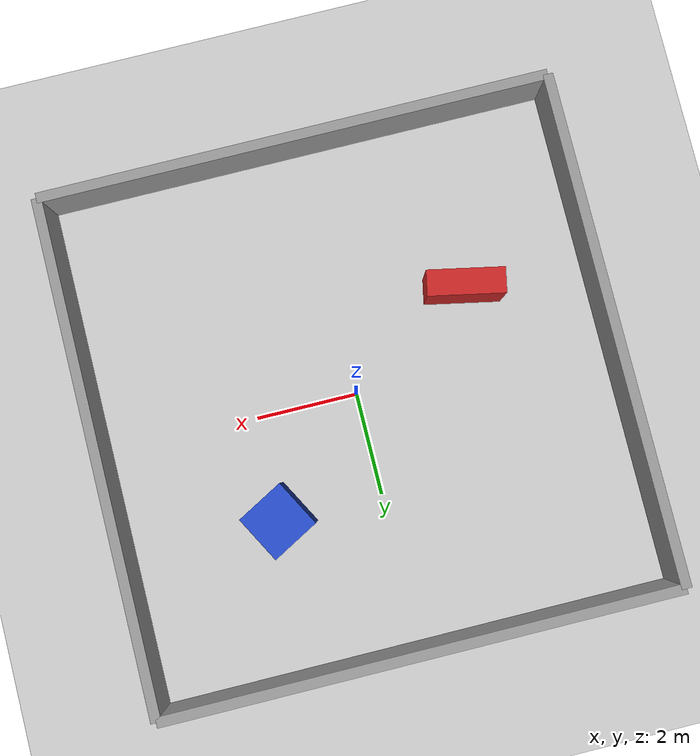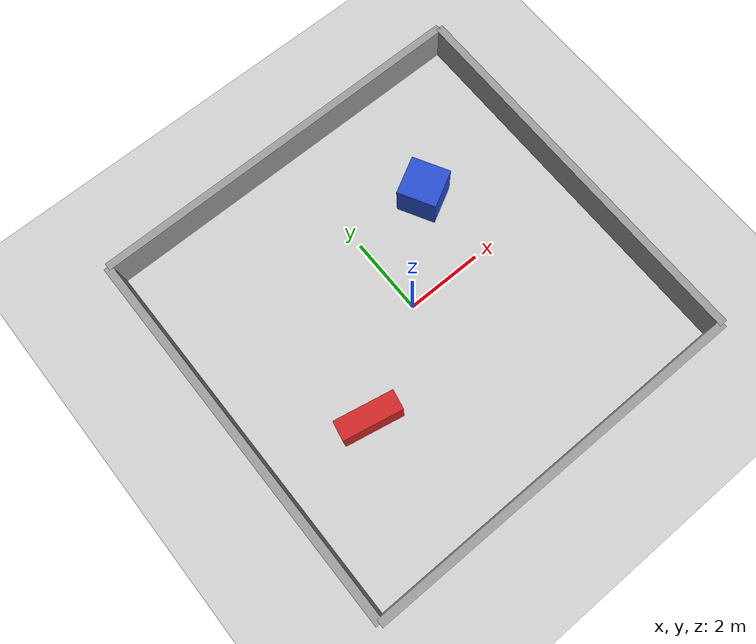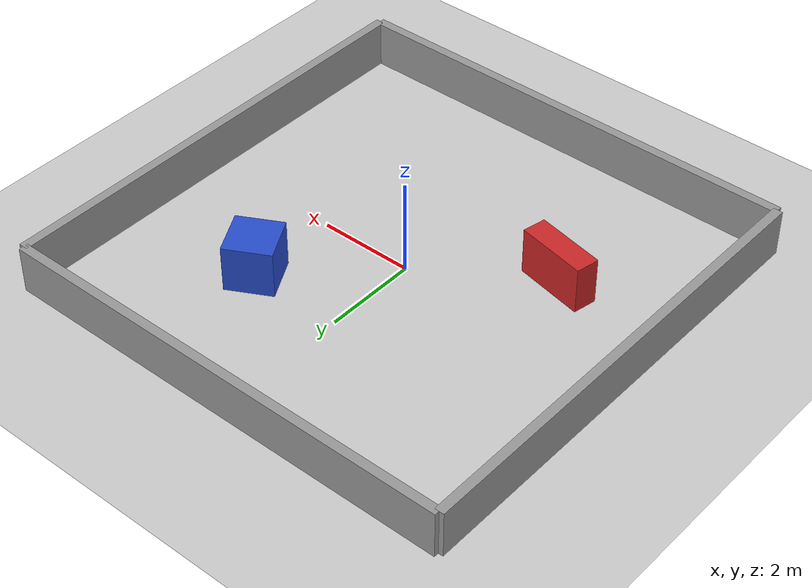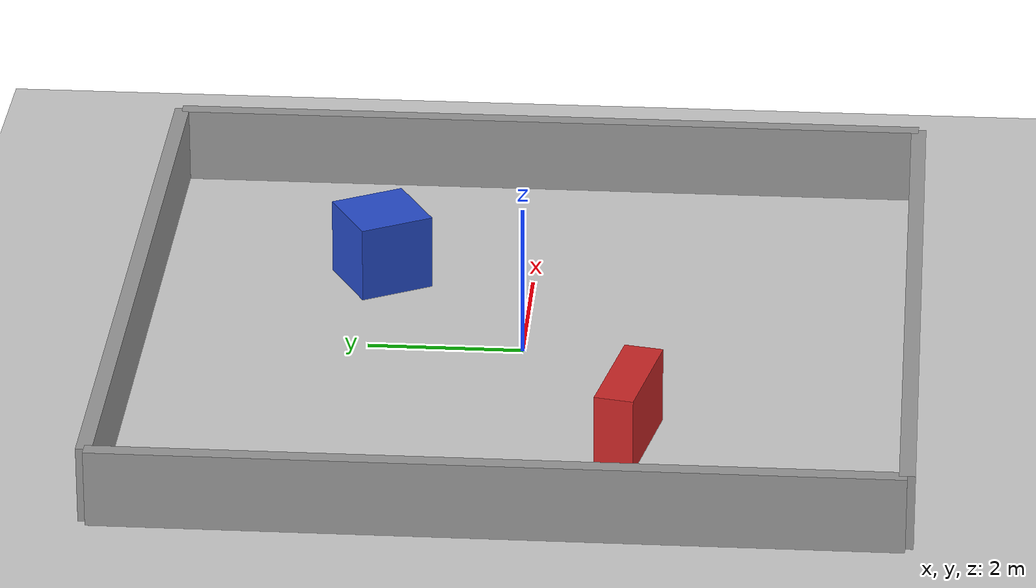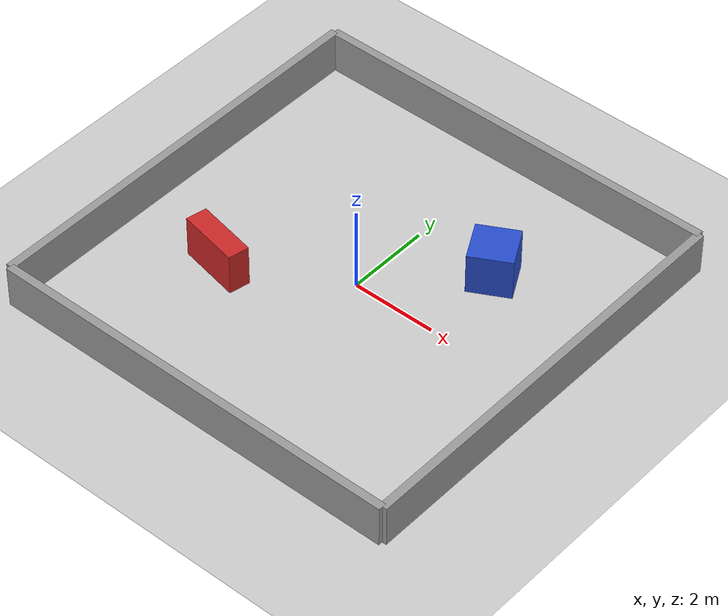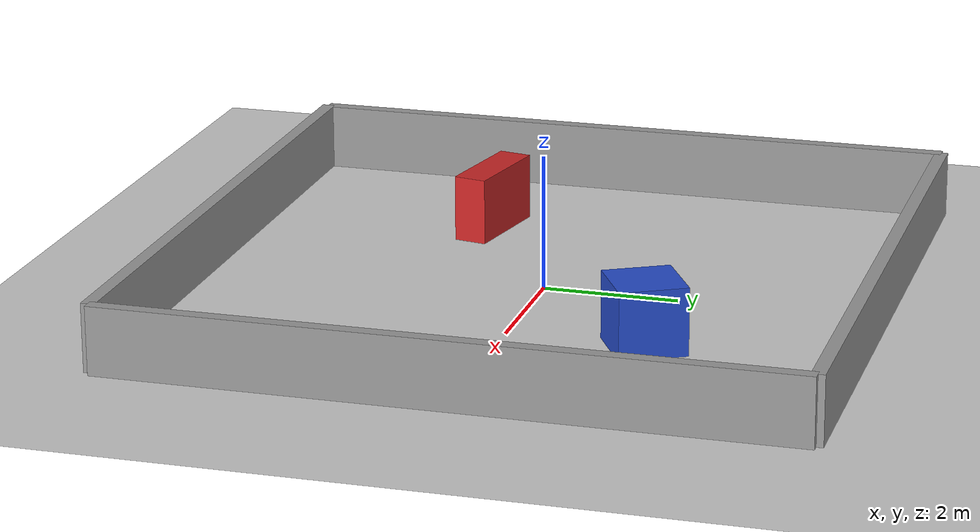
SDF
<?xml version="1.0" ?>
<sdf version="1.7">
  <world name="default">
    <include>
      <uri>model://sun</uri>
    </include>
    <include>
      <uri>model://ground_plane</uri>
    </include>

    <!-- Room for RPLidar to detect -->
    <model name="room">
      <static>true</static>

      <!-- North Wall -->
      <link name="north_wall">
        <pose>5 0 0.5 0 0 0</pose>
        <collision name="collision">
          <geometry><box><size>0.2 10 1</size></box></geometry>
        </collision>
        <visual name="visual">
          <geometry><box><size>0.2 10 1</size></box></geometry>
          <material><script><uri>file://media/materials/scripts/gazebo.material</uri><name>Gazebo/Grey</name></script></material>
        </visual>
      </link>

      <!-- South Wall -->
      <link name="south_wall">
        <pose>-5 0 0.5 0 0 0</pose>
        <collision name="collision">
          <geometry><box><size>0.2 10 1</size></box></geometry>
        </collision>
        <visual name="visual">
          <geometry><box><size>0.2 10 1</size></box></geometry>
          <material><script><uri>file://media/materials/scripts/gazebo.material</uri><name>Gazebo/Grey</name></script></material>
        </visual>
      </link>

      <!-- East Wall -->
      <link name="east_wall">
        <pose>0 5 0.5 0 0 0</pose>
        <collision name="collision">
          <geometry><box><size>10 0.2 1</size></box></geometry>
        </collision>
        <visual name="visual">
          <geometry><box><size>10 0.2 1</size></box></geometry>
          <material><script><uri>file://media/materials/scripts/gazebo.material</uri><name>Gazebo/Grey</name></script></material>
        </visual>
      </link>

      <!-- West Wall -->
      <link name="west_wall">
        <pose>0 -5 0.5 0 0 0</pose>
        <collision name="collision">
          <geometry><box><size>10 0.2 1</size></box></geometry>
        </collision>
        <visual name="visual">
          <geometry><box><size>10 0.2 1</size></box></geometry>
          <material><script><uri>file://media/materials/scripts/gazebo.material</uri><name>Gazebo/Grey</name></script></material>
        </visual>
      </link>
    </model>

    <!-- Obstacles for SLAM to track -->
    <model name="box1">
      <static>true</static>
      <pose>2 2 0.5 0 0 0.5</pose>
      <link name="link">
        <collision name="collision">
          <geometry><box><size>1 1 1</size></box></geometry>
        </collision>
        <visual name="visual">
          <geometry><box><size>1 1 1</size></box></geometry>
          <material><script><uri>file://media/materials/scripts/gazebo.material</uri><name>Gazebo/Blue</name></script></material>
        </visual>
      </link>
    </model>

    <model name="box2">
      <static>true</static>
      <pose>-2.5 -1.5 0.5 0 0 -0.2</pose>
      <link name="link">
        <collision name="collision">
          <geometry><box><size>1.5 0.5 1</size></box></geometry>
        </collision>
        <visual name="visual">
          <geometry><box><size>1.5 0.5 1</size></box></geometry>
          <material><script><uri>file://media/materials/scripts/gazebo.material</uri><name>Gazebo/Red</name></script></material>
        </visual>
      </link>
    </model>

  </world>
</sdf>
